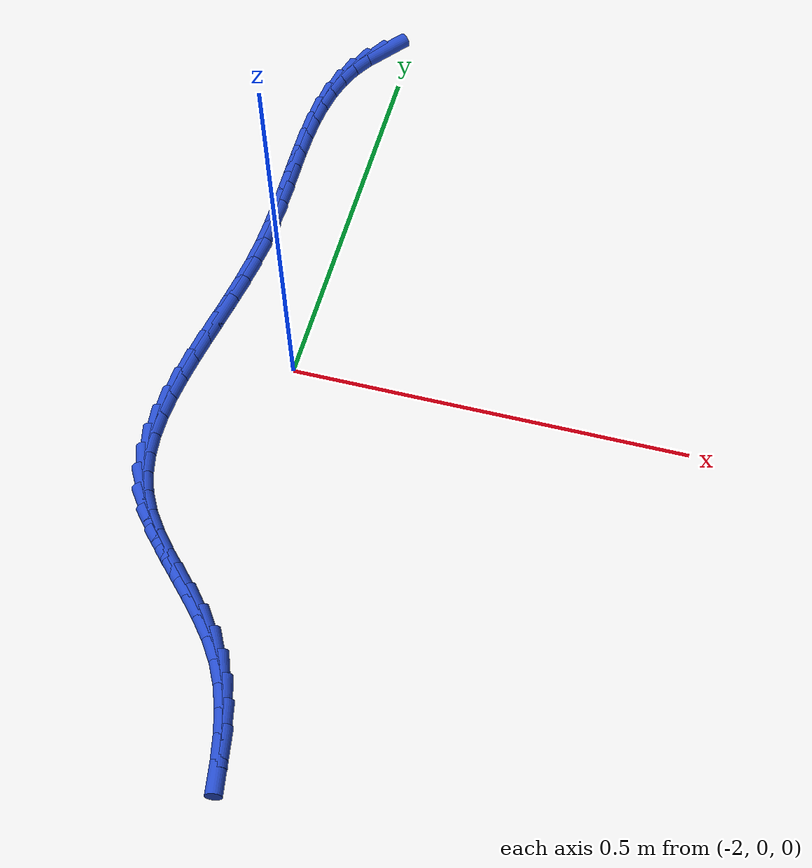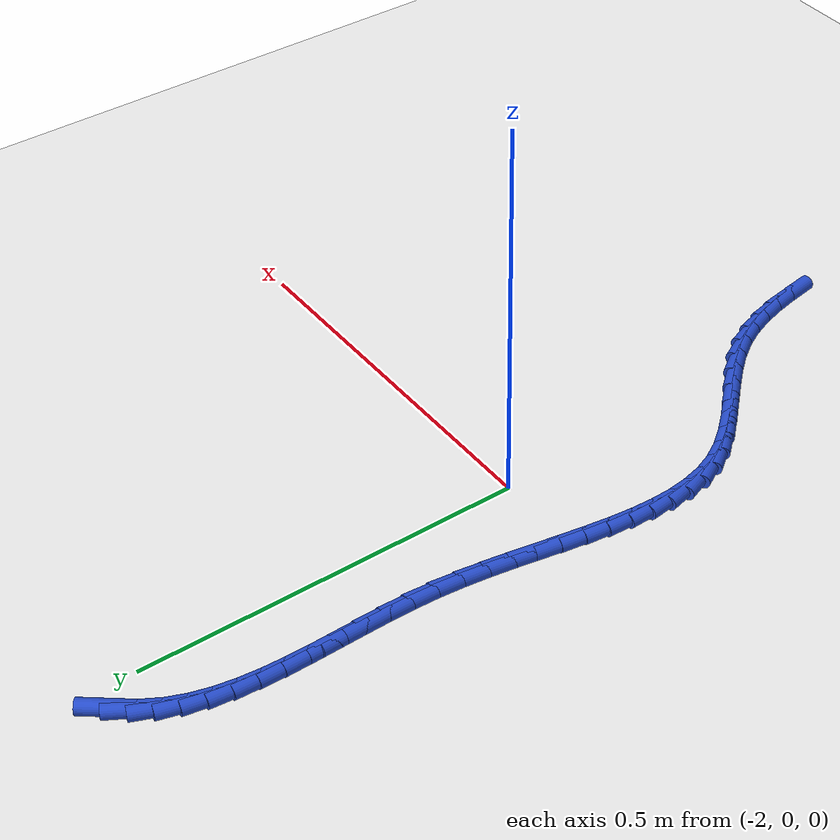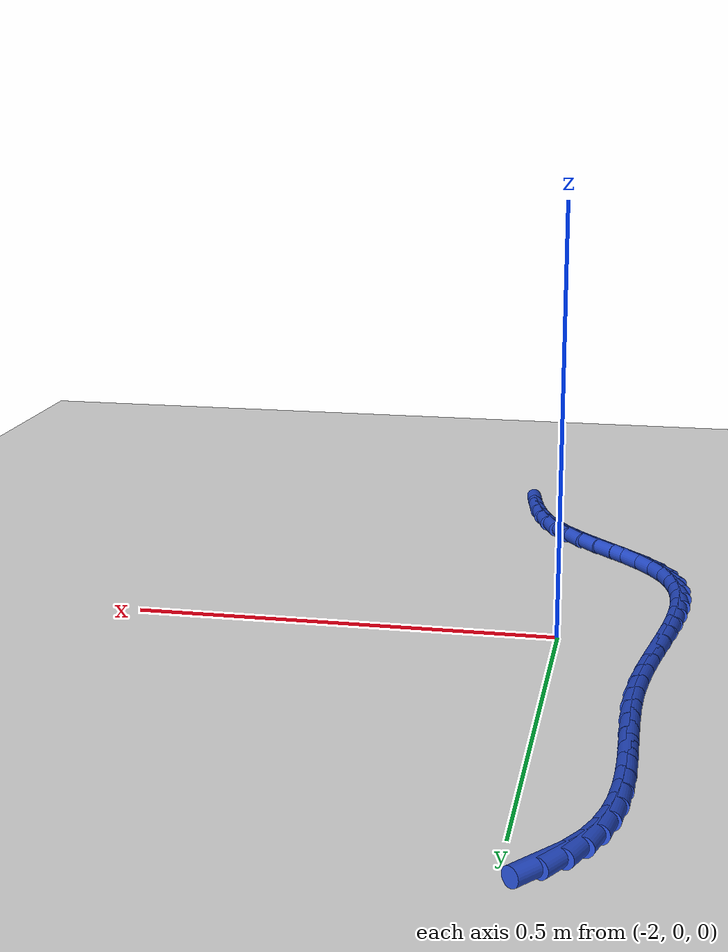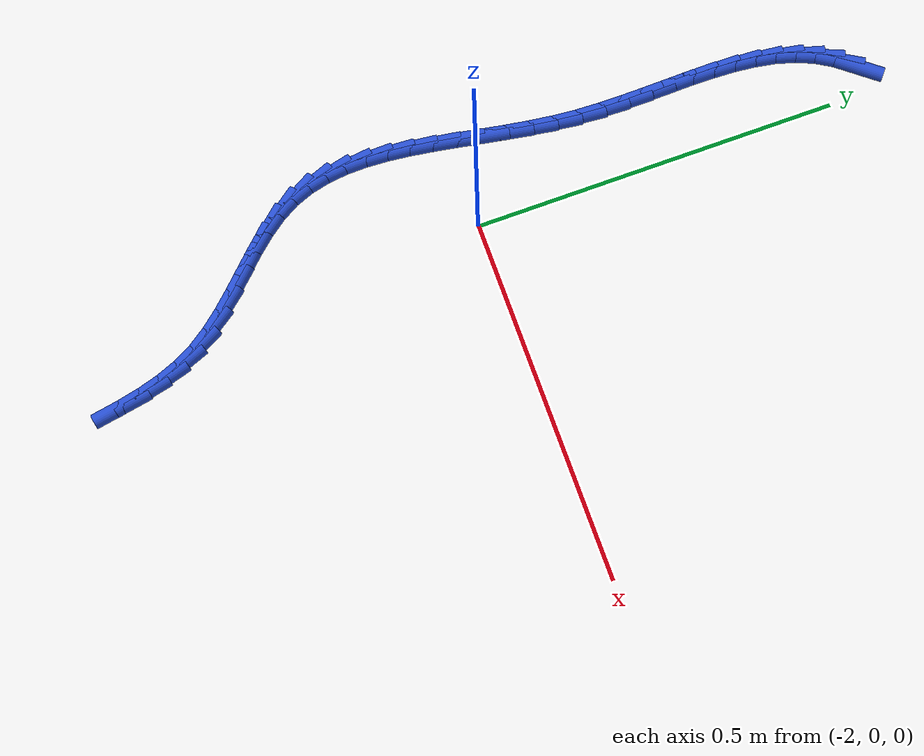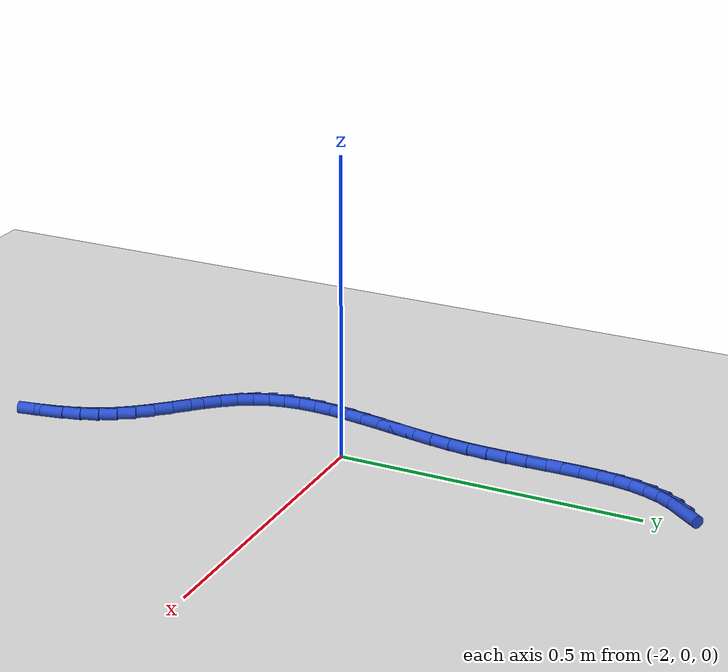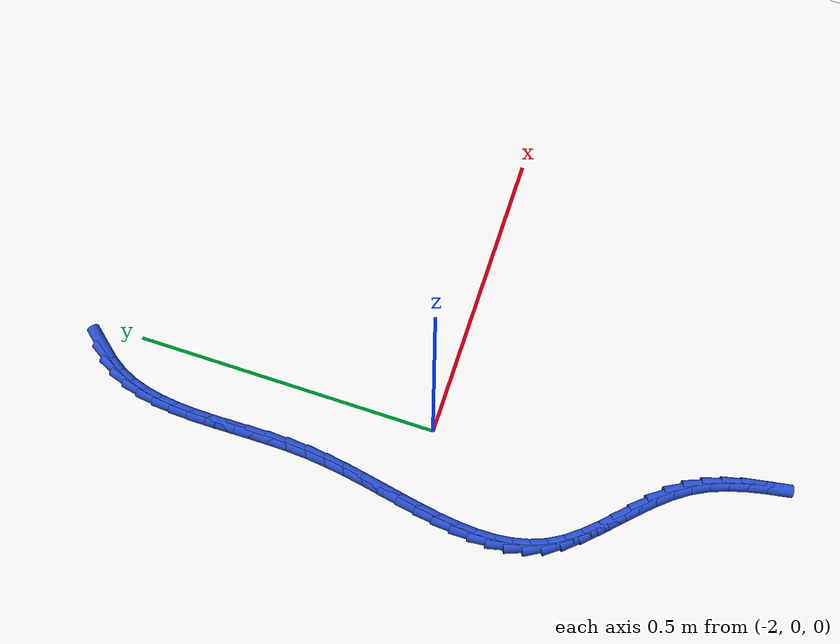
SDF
<sdf version="1.6">
 <world name="default">
  <model name="ground_plane">
   <static>1</static>
   <link name="link">
    <collision name="collision">
     <geometry><plane><normal>0 0 1</normal><size>100 100</size></plane></geometry>
     <surface><friction><ode><mu>100</mu><mu2>50</mu2></ode></friction></surface>
    </collision>
    <visual name="visual">
     <cast_shadows>0</cast_shadows>
     <geometry><plane><normal>0 0 1</normal><size>100 100</size></plane></geometry>
     <material>
      <script><uri>file://media/materials/scripts/gazebo.material</uri><name>Gazebo/WhiteGlow</name></script>
     </material>
    </visual>
   </link>
  </model>
  <model name="line">
   <link name="link_96">
    <pose>-2.037186990560522 0.5493194417694514 0.01 0 1.57 0.8942060217921092</pose>
    <collision name="collision">
     <geometry><cylinder><radius>0.01</radius><length>0.08</length></cylinder></geometry>
    </collision>
    <visual name="visual">
     <material>
      <script><name>Gazebo/Blue</name><uri>file://media/materials/scripts/gazebo.material</uri></script>
     </material>
     <geometry><cylinder><radius>0.01</radius><length>0.08</length></cylinder></geometry>
    </visual>
   </link>
   <link name="link_97">
    <pose>-2.0544258529135324 0.5278523703351142 0.01 0 1.57 1.0308470976992774</pose>
    <collision name="collision">
     <geometry><cylinder><radius>0.01</radius><length>0.08</length></cylinder></geometry>
    </collision>
    <visual name="visual">
     <material>
      <script><name>Gazebo/Blue</name><uri>file://media/materials/scripts/gazebo.material</uri></script>
     </material>
     <geometry><cylinder><radius>0.01</radius><length>0.08</length></cylinder></geometry>
    </visual>
   </link>
   <link name="link_98">
    <pose>-2.0682698522726644 0.5047544238034771 0.01 0 1.57 1.171951809127235</pose>
    <collision name="collision">
     <geometry><cylinder><radius>0.01</radius><length>0.08</length></cylinder></geometry>
    </collision>
    <visual name="visual">
     <material>
      <script><name>Gazebo/Blue</name><uri>file://media/materials/scripts/gazebo.material</uri></script>
     </material>
     <geometry><cylinder><radius>0.01</radius><length>0.08</length></cylinder></geometry>
    </visual>
   </link>
   <link name="link_99">
    <pose>-2.078713467285085 0.47997315745684554 0.01 0 1.57 1.2936397998911002</pose>
    <collision name="collision">
     <geometry><cylinder><radius>0.01</radius><length>0.08</length></cylinder></geometry>
    </collision>
    <visual name="visual">
     <material>
      <script><name>Gazebo/Blue</name><uri>file://media/materials/scripts/gazebo.material</uri></script>
     </material>
     <geometry><cylinder><radius>0.01</radius><length>0.08</length></cylinder></geometry>
    </visual>
   </link>
   <link name="link_100">
    <pose>-2.086199545962106 0.45365803866117665 0.01 0 1.57 1.392663447406859</pose>
    <collision name="collision">
     <geometry><cylinder><radius>0.01</radius><length>0.08</length></cylinder></geometry>
    </collision>
    <visual name="visual">
     <material>
      <script><name>Gazebo/Blue</name><uri>file://media/materials/scripts/gazebo.material</uri></script>
     </material>
     <geometry><cylinder><radius>0.01</radius><length>0.08</length></cylinder></geometry>
    </visual>
   </link>
   <link name="link_101">
    <pose>-2.0911854242262184 0.42596505905586585 0.01 0 1.57 1.4693635407218912</pose>
    <collision name="collision">
     <geometry><cylinder><radius>0.01</radius><length>0.08</length></cylinder></geometry>
    </collision>
    <visual name="visual">
     <material>
      <script><name>Gazebo/Blue</name><uri>file://media/materials/scripts/gazebo.material</uri></script>
     </material>
     <geometry><cylinder><radius>0.01</radius><length>0.08</length></cylinder></geometry>
    </visual>
   </link>
   <link name="link_102">
    <pose>-2.0941284379999114 0.39705021028030996 0.01 0 1.57 1.5255486350606058</pose>
    <collision name="collision">
     <geometry><cylinder><radius>0.01</radius><length>0.08</length></cylinder></geometry>
    </collision>
    <visual name="visual">
     <material>
      <script><name>Gazebo/Blue</name><uri>file://media/materials/scripts/gazebo.material</uri></script>
     </material>
     <geometry><cylinder><radius>0.01</radius><length>0.08</length></cylinder></geometry>
    </visual>
   </link>
   <link name="link_103">
    <pose>-2.0954859232056764 0.36706948397390393 0.01 0 1.57 1.5633737367893392</pose>
    <collision name="collision">
     <geometry><cylinder><radius>0.01</radius><length>0.08</length></cylinder></geometry>
    </collision>
    <visual name="visual">
     <material>
      <script><name>Gazebo/Blue</name><uri>file://media/materials/scripts/gazebo.material</uri></script>
     </material>
     <geometry><cylinder><radius>0.01</radius><length>0.08</length></cylinder></geometry>
    </visual>
   </link>
   <link name="link_104">
    <pose>-2.095715215766003 0.3361788717760449 0.01 0 1.57 -1.556843336012665</pose>
    <collision name="collision">
     <geometry><cylinder><radius>0.01</radius><length>0.08</length></cylinder></geometry>
    </collision>
    <visual name="visual">
     <material>
      <script><name>Gazebo/Blue</name><uri>file://media/materials/scripts/gazebo.material</uri></script>
     </material>
     <geometry><cylinder><radius>0.01</radius><length>0.08</length></cylinder></geometry>
    </visual>
   </link>
   <link name="link_105">
    <pose>-2.0952736516033807 0.3045343653261278 0.01 0 1.57 -1.550481627471032</pose>
    <collision name="collision">
     <geometry><cylinder><radius>0.01</radius><length>0.08</length></cylinder></geometry>
    </collision>
    <visual name="visual">
     <material>
      <script><name>Gazebo/Blue</name><uri>file://media/materials/scripts/gazebo.material</uri></script>
     </material>
     <geometry><cylinder><radius>0.01</radius><length>0.08</length></cylinder></geometry>
    </visual>
   </link>
   <link name="link_106">
    <pose>-2.0946185666403 0.2722919562635496 0.01 0 1.57 -1.5582138977699755</pose>
    <collision name="collision">
     <geometry><cylinder><radius>0.01</radius><length>0.08</length></cylinder></geometry>
    </collision>
    <visual name="visual">
     <material>
      <script><name>Gazebo/Blue</name><uri>file://media/materials/scripts/gazebo.material</uri></script>
     </material>
     <geometry><cylinder><radius>0.01</radius><length>0.08</length></cylinder></geometry>
    </visual>
   </link>
   <link name="link_107">
    <pose>-2.0942072967992518 0.23960763622770578 0.01 0 1.57 1.5620043453046855</pose>
    <collision name="collision">
     <geometry><cylinder><radius>0.01</radius><length>0.08</length></cylinder></geometry>
    </collision>
    <visual name="visual">
     <material>
      <script><name>Gazebo/Blue</name><uri>file://media/materials/scripts/gazebo.material</uri></script>
     </material>
     <geometry><cylinder><radius>0.01</radius><length>0.08</length></cylinder></geometry>
    </visual>
   </link>
   <link name="link_108">
    <pose>-2.0944971780027264 0.20663739685799215 0.01 0 1.57 1.5270670961215331</pose>
    <collision name="collision">
     <geometry><cylinder><radius>0.01</radius><length>0.08</length></cylinder></geometry>
    </collision>
    <visual name="visual">
     <material>
      <script><name>Gazebo/Blue</name><uri>file://media/materials/scripts/gazebo.material</uri></script>
     </material>
     <geometry><cylinder><radius>0.01</radius><length>0.08</length></cylinder></geometry>
    </visual>
   </link>
   <link name="link_109">
    <pose>-2.095945546173213 0.17353722979380526 0.01 0 1.57 1.480476934514997</pose>
    <collision name="collision">
     <geometry><cylinder><radius>0.01</radius><length>0.08</length></cylinder></geometry>
    </collision>
    <visual name="visual">
     <material>
      <script><name>Gazebo/Blue</name><uri>file://media/materials/scripts/gazebo.material</uri></script>
     </material>
     <geometry><cylinder><radius>0.01</radius><length>0.08</length></cylinder></geometry>
    </visual>
   </link>
   <link name="link_110">
    <pose>-2.0989413605203997 0.14045835683984387 0.01 0 1.57 1.4388165972656954</pose>
    <collision name="collision">
     <geometry><cylinder><radius>0.01</radius><length>0.08</length></cylinder></geometry>
    </collision>
    <visual name="visual">
     <material>
      <script><name>Gazebo/Blue</name><uri>file://media/materials/scripts/gazebo.material</uri></script>
     </material>
     <geometry><cylinder><radius>0.01</radius><length>0.08</length></cylinder></geometry>
    </visual>
   </link>
   <link name="link_111">
    <pose>-2.1033148994596713 0.10751302724819822 0.01 0 1.57 1.4099467039075682</pose>
    <collision name="collision">
     <geometry><cylinder><radius>0.01</radius><length>0.08</length></cylinder></geometry>
    </collision>
    <visual name="visual">
     <material>
      <script><name>Gazebo/Blue</name><uri>file://media/materials/scripts/gazebo.material</uri></script>
     </material>
     <geometry><cylinder><radius>0.01</radius><length>0.08</length></cylinder></geometry>
    </visual>
   </link>
   <link name="link_112">
    <pose>-2.1086235317263196 0.07479445258973774 0.01 0 1.57 1.393676062876169</pose>
    <collision name="collision">
     <geometry><cylinder><radius>0.01</radius><length>0.08</length></cylinder></geometry>
    </collision>
    <visual name="visual">
     <material>
      <script><name>Gazebo/Blue</name><uri>file://media/materials/scripts/gazebo.material</uri></script>
     </material>
     <geometry><cylinder><radius>0.01</radius><length>0.08</length></cylinder></geometry>
    </visual>
   </link>
   <link name="link_113">
    <pose>-2.11442277565923 0.04239571535505744 0.01 0 1.57 1.3900420091303152</pose>
    <collision name="collision">
     <geometry><cylinder><radius>0.01</radius><length>0.08</length></cylinder></geometry>
    </collision>
    <visual name="visual">
     <material>
      <script><name>Gazebo/Blue</name><uri>file://media/materials/scripts/gazebo.material</uri></script>
     </material>
     <geometry><cylinder><radius>0.01</radius><length>0.08</length></cylinder></geometry>
    </visual>
   </link>
   <link name="link_114">
    <pose>-2.1202681495972913 0.010409898034750707 0.01 0 1.57 1.399460602965137</pose>
    <collision name="collision">
     <geometry><cylinder><radius>0.01</radius><length>0.08</length></cylinder></geometry>
    </collision>
    <visual name="visual">
     <material>
      <script><name>Gazebo/Blue</name><uri>file://media/materials/scripts/gazebo.material</uri></script>
     </material>
     <geometry><cylinder><radius>0.01</radius><length>0.08</length></cylinder></geometry>
    </visual>
   </link>
   <link name="link_115">
    <pose>-2.12571517187939 -0.021069916880587576 0.01 0 1.57 1.4227907418517454</pose>
    <collision name="collision">
     <geometry><cylinder><radius>0.01</radius><length>0.08</length></cylinder></geometry>
    </collision>
    <visual name="visual">
     <material>
      <script><name>Gazebo/Blue</name><uri>file://media/materials/scripts/gazebo.material</uri></script>
     </material>
     <geometry><cylinder><radius>0.01</radius><length>0.08</length></cylinder></geometry>
    </visual>
   </link>
   <link name="link_116">
    <pose>-2.130319360844414 -0.051950646900363606 0.01 0 1.57 1.461363394785023</pose>
    <collision name="collision">
     <geometry><cylinder><radius>0.01</radius><length>0.08</length></cylinder></geometry>
    </collision>
    <visual name="visual">
     <material>
      <script><name>Gazebo/Blue</name><uri>file://media/materials/scripts/gazebo.material</uri></script>
     </material>
     <geometry><cylinder><radius>0.01</radius><length>0.08</length></cylinder></geometry>
    </visual>
   </link>
   <link name="link_117">
    <pose>-2.1336362348312505 -0.08213920953398397 0.01 0 1.57 1.5169403352743216</pose>
    <collision name="collision">
     <geometry><cylinder><radius>0.01</radius><length>0.08</length></cylinder></geometry>
    </collision>
    <visual name="visual">
     <material>
      <script><name>Gazebo/Blue</name><uri>file://media/materials/scripts/gazebo.material</uri></script>
     </material>
     <geometry><cylinder><radius>0.01</radius><length>0.08</length></cylinder></geometry>
    </visual>
   </link>
   <link name="link_118">
    <pose>-2.1352213121787864 -0.11154252229085296 0.01 0 1.57 -1.550073566766399</pose>
    <collision name="collision">
     <geometry><cylinder><radius>0.01</radius><length>0.08</length></cylinder></geometry>
    </collision>
    <visual name="visual">
     <material>
      <script><name>Gazebo/Blue</name><uri>file://media/materials/scripts/gazebo.material</uri></script>
     </material>
     <geometry><cylinder><radius>0.01</radius><length>0.08</length></cylinder></geometry>
    </visual>
   </link>
   <link name="link_119">
    <pose>-2.1346301112259103 -0.1400675026803772 0.01 0 1.57 -1.4547485735655035</pose>
    <collision name="collision">
     <geometry><cylinder><radius>0.01</radius><length>0.08</length></cylinder></geometry>
    </collision>
    <visual name="visual">
     <material>
      <script><name>Gazebo/Blue</name><uri>file://media/materials/scripts/gazebo.material</uri></script>
     </material>
     <geometry><cylinder><radius>0.01</radius><length>0.08</length></cylinder></geometry>
    </visual>
   </link>
   <link name="link_120">
    <pose>-2.1314181503115077 -0.16762106821196254 0.01 0 1.57 -1.3381151395595239</pose>
    <collision name="collision">
     <geometry><cylinder><radius>0.01</radius><length>0.08</length></cylinder></geometry>
    </collision>
    <visual name="visual">
     <material>
      <script><name>Gazebo/Blue</name><uri>file://media/materials/scripts/gazebo.material</uri></script>
     </material>
     <geometry><cylinder><radius>0.01</radius><length>0.08</length></cylinder></geometry>
    </visual>
   </link>
   <link name="link_121">
    <pose>-2.1251409477744674 -0.19411013639501476 0.01 0 1.57 -1.2021086724079197</pose>
    <collision name="collision">
     <geometry><cylinder><radius>0.01</radius><length>0.08</length></cylinder></geometry>
    </collision>
    <visual name="visual">
     <material>
      <script><name>Gazebo/Blue</name><uri>file://media/materials/scripts/gazebo.material</uri></script>
     </material>
     <geometry><cylinder><radius>0.01</radius><length>0.08</length></cylinder></geometry>
    </visual>
   </link>
   <link name="link_122">
    <pose>-2.115354021953676 -0.21944162473894047 0.01 0 1.57 -1.0539193944946532</pose>
    <collision name="collision">
     <geometry><cylinder><radius>0.01</radius><length>0.08</length></cylinder></geometry>
    </collision>
    <visual name="visual">
     <material>
      <script><name>Gazebo/Blue</name><uri>file://media/materials/scripts/gazebo.material</uri></script>
     </material>
     <geometry><cylinder><radius>0.01</radius><length>0.08</length></cylinder></geometry>
    </visual>
   </link>
   <link name="link_123">
    <pose>-2.1016576862220724 -0.24353697625372822 0.01 0 1.57 -0.928178000670203</pose>
    <collision name="collision">
     <geometry><cylinder><radius>0.01</radius><length>0.08</length></cylinder></geometry>
    </collision>
    <visual name="visual">
     <material>
      <script><name>Gazebo/Blue</name><uri>file://media/materials/scripts/gazebo.material</uri></script>
     </material>
     <geometry><cylinder><radius>0.01</radius><length>0.08</length></cylinder></geometry>
    </visual>
   </link>
   <link name="link_124">
    <pose>-2.0844177649682174 -0.26656586304306645 0.01 0 1.57 -0.8462215095269995</pose>
    <collision name="collision">
     <geometry><cylinder><radius>0.01</radius><length>0.08</length></cylinder></geometry>
    </collision>
    <visual name="visual">
     <material>
      <script><name>Gazebo/Blue</name><uri>file://media/materials/scripts/gazebo.material</uri></script>
     </material>
     <geometry><cylinder><radius>0.01</radius><length>0.08</length></cylinder></geometry>
    </visual>
   </link>
   <link name="link_125">
    <pose>-2.064642233773297 -0.2889061849243002 0.01 0 1.57 -0.802774845129021</pose>
    <collision name="collision">
     <geometry><cylinder><radius>0.01</radius><length>0.08</length></cylinder></geometry>
    </collision>
    <visual name="visual">
     <material>
      <script><name>Gazebo/Blue</name><uri>file://media/materials/scripts/gazebo.material</uri></script>
     </material>
     <geometry><cylinder><radius>0.01</radius><length>0.08</length></cylinder></geometry>
    </visual>
   </link>
   <link name="link_126">
    <pose>-2.043358952232639 -0.3109422894218736 0.01 0 1.57 -0.7934441866474411</pose>
    <collision name="collision">
     <geometry><cylinder><radius>0.01</radius><length>0.08</length></cylinder></geometry>
    </collision>
    <visual name="visual">
     <material>
      <script><name>Gazebo/Blue</name><uri>file://media/materials/scripts/gazebo.material</uri></script>
     </material>
     <geometry><cylinder><radius>0.01</radius><length>0.08</length></cylinder></geometry>
    </visual>
   </link>
   <link name="link_127">
    <pose>-2.021595779941574 -0.3330585240602292 0.01 0 1.57 -0.8165669747012466</pose>
    <collision name="collision">
     <geometry><cylinder><radius>0.01</radius><length>0.08</length></cylinder></geometry>
    </collision>
    <visual name="visual">
     <material>
      <script><name>Gazebo/Blue</name><uri>file://media/materials/scripts/gazebo.material</uri></script>
     </material>
     <geometry><cylinder><radius>0.01</radius><length>0.08</length></cylinder></geometry>
    </visual>
   </link>
   <link name="link_128">
    <pose>-2.000380576495431 -0.35563923636381145 0.01 0 1.57 -0.8731743179804251</pose>
    <collision name="collision">
     <geometry><cylinder><radius>0.01</radius><length>0.08</length></cylinder></geometry>
    </collision>
    <visual name="visual">
     <material>
      <script><name>Gazebo/Blue</name><uri>file://media/materials/scripts/gazebo.material</uri></script>
     </material>
     <geometry><cylinder><radius>0.01</radius><length>0.08</length></cylinder></geometry>
    </visual>
   </link>
   <link name="link_129">
    <pose>-1.9807412014895387 -0.37906877385706383 0.01 0 1.57 -0.9663075533817959</pose>
    <collision name="collision">
     <geometry><cylinder><radius>0.01</radius><length>0.08</length></cylinder></geometry>
    </collision>
    <visual name="visual">
     <material>
      <script><name>Gazebo/Blue</name><uri>file://media/materials/scripts/gazebo.material</uri></script>
     </material>
     <geometry><cylinder><radius>0.01</radius><length>0.08</length></cylinder></geometry>
    </visual>
   </link>
   <link name="link_130">
    <pose>-1.9637055123305618 -0.40373148319864277 0.01 0 1.57 -1.088772098380288</pose>
    <collision name="collision">
     <geometry><cylinder><radius>0.01</radius><length>0.08</length></cylinder></geometry>
    </collision>
    <visual name="visual">
     <material>
      <script><name>Gazebo/Blue</name><uri>file://media/materials/scripts/gazebo.material</uri></script>
     </material>
     <geometry><cylinder><radius>0.01</radius><length>0.08</length></cylinder></geometry>
    </visual>
   </link>
   <link name="link_131">
    <pose>-1.950015265542388 -0.42989853579061676 0.01 0 1.57 -1.2005455877685631</pose>
    <collision name="collision">
     <geometry><cylinder><radius>0.01</radius><length>0.08</length></cylinder></geometry>
    </collision>
    <visual name="visual">
     <material>
      <script><name>Gazebo/Blue</name><uri>file://media/materials/scripts/gazebo.material</uri></script>
     </material>
     <geometry><cylinder><radius>0.01</radius><length>0.08</length></cylinder></geometry>
    </visual>
   </link>
   <link name="link_132">
    <pose>-1.9393347508710432 -0.4574148807254043 0.01 0 1.57 -1.2897285020973386</pose>
    <collision name="collision">
     <geometry><cylinder><radius>0.01</radius><length>0.08</length></cylinder></geometry>
    </collision>
    <visual name="visual">
     <material>
      <script><name>Gazebo/Blue</name><uri>file://media/materials/scripts/gazebo.material</uri></script>
     </material>
     <geometry><cylinder><radius>0.01</radius><length>0.08</length></cylinder></geometry>
    </visual>
   </link>
   <link name="link_133">
    <pose>-1.9310746575851276 -0.4860251482889098 0.01 0 1.57 -1.3558582277981668</pose>
    <collision name="collision">
     <geometry><cylinder><radius>0.01</radius><length>0.08</length></cylinder></geometry>
    </collision>
    <visual name="visual">
     <material>
      <script><name>Gazebo/Blue</name><uri>file://media/materials/scripts/gazebo.material</uri></script>
     </material>
     <geometry><cylinder><radius>0.01</radius><length>0.08</length></cylinder></geometry>
    </visual>
   </link>
   <link name="link_134">
    <pose>-1.9246456749532428 -0.5154739687670371 0.01 0 1.57 -1.399761983945083</pose>
    <collision name="collision">
     <geometry><cylinder><radius>0.01</radius><length>0.08</length></cylinder></geometry>
    </collision>
    <visual name="visual">
     <material>
      <script><name>Gazebo/Blue</name><uri>file://media/materials/scripts/gazebo.material</uri></script>
     </material>
     <geometry><cylinder><radius>0.01</radius><length>0.08</length></cylinder></geometry>
    </visual>
   </link>
  </model>
 </world>
</sdf>
